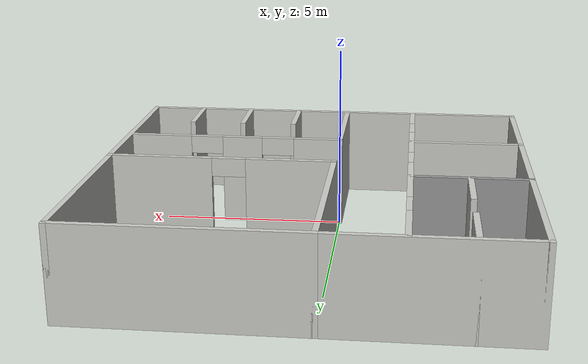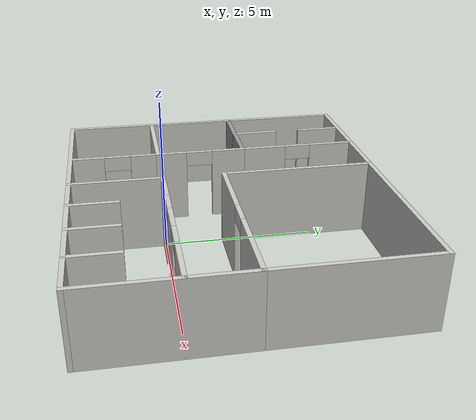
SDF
<?xml version='1.0'?>
<sdf version='1.6'>
  <model name='storehouse'>
    <pose frame=''>0.5 2 0 0 -0 0</pose>
    <link name='Wall_1'>
      <collision name='Wall_1_Collision'>
        <geometry>
          <box>
            <size>5.15 0.15 2.5</size>
          </box>
        </geometry>
        <pose frame=''>0 0 1.25 0 -0 0</pose>
      </collision>
      <visual name='Wall_1_Visual'>
        <pose frame=''>0 0 1.25 0 -0 0</pose>
        <geometry>
          <box>
            <size>5.15 0.15 2.5</size>
          </box>
        </geometry>
        <material>
          <script>
            <uri>file://media/materials/scripts/gazebo.material</uri>
            <name>Gazebo/CeilingTiled</name>
          </script>
          <ambient>0.227451 0.227451 0.227451 1</ambient>
        </material>
      </visual>
      <pose frame=''>5.5 -2.5 0 0 0 -1.5708</pose>
    </link>
    <link name='Wall_10'>
      <collision name='Wall_10_Collision'>
        <geometry>
          <box>
            <size>3.15 0.15 2.5</size>
          </box>
        </geometry>
        <pose frame=''>0 0 1.25 0 -0 0</pose>
      </collision>
      <visual name='Wall_10_Visual'>
        <pose frame=''>0 0 1.25 0 -0 0</pose>
        <geometry>
          <box>
            <size>3.15 0.15 2.5</size>
          </box>
        </geometry>
        <material>
          <script>
            <uri>file://media/materials/scripts/gazebo.material</uri>
            <name>Gazebo/Grey</name>
          </script>
          <ambient>0.227451 0.227451 0.227451 1</ambient>
        </material>
      </visual>
      <pose frame=''>-4 1 0 0 -0 0</pose>
    </link>
    <link name='Wall_12'>
      <pose frame=''>-2.5 -2 0 0 0 -1.5708</pose>
      <visual name='Wall_12_Visual_0'>
        <pose frame=''>-2.48638 0 1.25 0 -0 0</pose>
        <geometry>
          <box>
            <size>1.17723 0.15 2.5</size>
          </box>
        </geometry>
        <material>
          <script>
            <uri>file://media/materials/scripts/gazebo.material</uri>
            <name>Gazebo/CeilingTiled</name>
          </script>
          <ambient>0.227451 0.227451 0.227451 1</ambient>
        </material>
      </visual>
      <collision name='Wall_12_Collision_0'>
        <geometry>
          <box>
            <size>1.17723 0.15 2.5</size>
          </box>
        </geometry>
        <pose frame=''>-2.48638 0 1.25 0 -0 0</pose>
      </collision>
      <visual name='Wall_12_Visual_1'>
        <pose frame=''>-0.019629 0 1.25 0 -0 0</pose>
        <geometry>
          <box>
            <size>1.95628 0.15 2.5</size>
          </box>
        </geometry>
        <material>
          <script>
            <uri>file://media/materials/scripts/gazebo.material</uri>
            <name>Gazebo/CeilingTiled</name>
          </script>
          <ambient>0.227451 0.227451 0.227451 1</ambient>
        </material>
      </visual>
      <collision name='Wall_12_Collision_1'>
        <geometry>
          <box>
            <size>1.95628 0.15 2.5</size>
          </box>
        </geometry>
        <pose frame=''>-0.019629 0 1.25 0 -0 0</pose>
      </collision>
      <visual name='Wall_12_Visual_2'>
        <pose frame=''>2.46676 0 1.25 0 -0 0</pose>
        <geometry>
          <box>
            <size>1.21649 0.15 2.5</size>
          </box>
        </geometry>
        <material>
          <script>
            <uri>file://media/materials/scripts/gazebo.material</uri>
            <name>Gazebo/CeilingTiled</name>
          </script>
          <ambient>0.227451 0.227451 0.227451 1</ambient>
        </material>
      </visual>
      <collision name='Wall_12_Collision_2'>
        <geometry>
          <box>
            <size>1.21649 0.15 2.5</size>
          </box>
        </geometry>
        <pose frame=''>2.46676 0 1.25 0 -0 0</pose>
      </collision>
      <visual name='Wall_12_Visual_3'>
        <pose frame=''>-1.44777 0 2.25 0 -0 0</pose>
        <geometry>
          <box>
            <size>0.9 0.15 0.5</size>
          </box>
        </geometry>
        <material>
          <script>
            <uri>file://media/materials/scripts/gazebo.material</uri>
            <name>Gazebo/CeilingTiled</name>
          </script>
          <ambient>0.227451 0.227451 0.227451 1</ambient>
        </material>
      </visual>
      <collision name='Wall_12_Collision_3'>
        <geometry>
          <box>
            <size>0.9 0.15 0.5</size>
          </box>
        </geometry>
        <pose frame=''>-1.44777 0 2.25 0 -0 0</pose>
      </collision>
      <visual name='Wall_12_Visual_4'>
        <pose frame=''>1.40851 0 2.25 0 -0 0</pose>
        <geometry>
          <box>
            <size>0.9 0.15 0.5</size>
          </box>
        </geometry>
        <material>
          <script>
            <uri>file://media/materials/scripts/gazebo.material</uri>
            <name>Gazebo/CeilingTiled</name>
          </script>
          <ambient>0.227451 0.227451 0.227451 1</ambient>
        </material>
      </visual>
      <collision name='Wall_12_Collision_4'>
        <geometry>
          <box>
            <size>0.9 0.15 0.5</size>
          </box>
        </geometry>
        <pose frame=''>1.40851 0 2.25 0 -0 0</pose>
      </collision>
    </link>
    <link name='Wall_14'>
      <collision name='Wall_14_Collision'>
        <geometry>
          <box>
            <size>3.15 0.15 2.5</size>
          </box>
        </geometry>
        <pose frame=''>0 0 1.25 0 -0 0</pose>
      </collision>
      <visual name='Wall_14_Visual'>
        <pose frame=''>0 0 1.25 0 -0 0</pose>
        <geometry>
          <box>
            <size>3.15 0.15 2.5</size>
          </box>
        </geometry>
        <material>
          <script>
            <uri>file://media/materials/scripts/gazebo.material</uri>
            <name>Gazebo/CeilingTiled</name>
          </script>
          <ambient>0.227451 0.227451 0.227451 1</ambient>
        </material>
      </visual>
      <pose frame=''>-4 -2 0 0 -0 0</pose>
    </link>
    <link name='Wall_16'>
      <collision name='Wall_16_Collision'>
        <geometry>
          <box>
            <size>3.15 0.15 2.5</size>
          </box>
        </geometry>
        <pose frame=''>0 0 1.25 0 -0 0</pose>
      </collision>
      <visual name='Wall_16_Visual'>
        <pose frame=''>0 0 1.25 0 -0 0</pose>
        <geometry>
          <box>
            <size>3.15 0.15 2.5</size>
          </box>
        </geometry>
        <material>
          <script>
            <uri>file://media/materials/scripts/gazebo.material</uri>
            <name>Gazebo/CeilingTiled</name>
          </script>
          <ambient>0.227451 0.227451 0.227451 1</ambient>
        </material>
      </visual>
      <pose frame=''>-0.5 -3.5 0 0 -0 1.5708</pose>
    </link>
    <link name='Wall_17'>
      <pose frame=''>2.5 -2 0 0 -0 0</pose>
      <visual name='Wall_17_Visual_0'>
        <pose frame=''>-2.3871 0 1.25 0 -0 0</pose>
        <geometry>
          <box>
            <size>1.3758 0.15 2.5</size>
          </box>
        </geometry>
        <material>
          <script>
            <uri>file://media/materials/scripts/gazebo.material</uri>
            <name>Gazebo/CeilingTiled</name>
          </script>
          <ambient>0.207843 0.207843 0.207843 1</ambient>
        </material>
      </visual>
      <collision name='Wall_17_Collision_0'>
        <geometry>
          <box>
            <size>1.3758 0.15 2.5</size>
          </box>
        </geometry>
        <pose frame=''>-2.3871 0 1.25 0 -0 0</pose>
      </collision>
      <visual name='Wall_17_Visual_1'>
        <pose frame=''>-0.239748 0 1.25 0 -0 0</pose>
        <geometry>
          <box>
            <size>1.1189 0.15 2.5</size>
          </box>
        </geometry>
        <material>
          <script>
            <uri>file://media/materials/scripts/gazebo.material</uri>
            <name>Gazebo/CeilingTiled</name>
          </script>
          <ambient>0.207843 0.207843 0.207843 1</ambient>
        </material>
      </visual>
      <collision name='Wall_17_Collision_1'>
        <geometry>
          <box>
            <size>1.1189 0.15 2.5</size>
          </box>
        </geometry>
        <pose frame=''>-0.239748 0 1.25 0 -0 0</pose>
      </collision>
      <visual name='Wall_17_Visual_2'>
        <pose frame=''>2.14735 0 1.25 0 -0 0</pose>
        <geometry>
          <box>
            <size>1.8553 0.15 2.5</size>
          </box>
        </geometry>
        <material>
          <script>
            <uri>file://media/materials/scripts/gazebo.material</uri>
            <name>Gazebo/CeilingTiled</name>
          </script>
          <ambient>0.207843 0.207843 0.207843 1</ambient>
        </material>
      </visual>
      <collision name='Wall_17_Collision_2'>
        <geometry>
          <box>
            <size>1.8553 0.15 2.5</size>
          </box>
        </geometry>
        <pose frame=''>2.14735 0 1.25 0 -0 0</pose>
      </collision>
      <visual name='Wall_17_Visual_3'>
        <pose frame=''>-1.2492 0 2.25 0 -0 0</pose>
        <geometry>
          <box>
            <size>0.9 0.15 0.5</size>
          </box>
        </geometry>
        <material>
          <script>
            <uri>file://media/materials/scripts/gazebo.material</uri>
            <name>Gazebo/CeilingTiled</name>
          </script>
          <ambient>0.207843 0.207843 0.207843 1</ambient>
        </material>
      </visual>
      <collision name='Wall_17_Collision_3'>
        <geometry>
          <box>
            <size>0.9 0.15 0.5</size>
          </box>
        </geometry>
        <pose frame=''>-1.2492 0 2.25 0 -0 0</pose>
      </collision>
      <visual name='Wall_17_Visual_4'>
        <pose frame=''>0.769704 0 2.25 0 -0 0</pose>
        <geometry>
          <box>
            <size>0.9 0.15 0.5</size>
          </box>
        </geometry>
        <material>
          <script>
            <uri>file://media/materials/scripts/gazebo.material</uri>
            <name>Gazebo/CeilingTiled</name>
          </script>
          <ambient>0.207843 0.207843 0.207843 1</ambient>
        </material>
      </visual>
      <collision name='Wall_17_Collision_4'>
        <geometry>
          <box>
            <size>0.9 0.15 0.5</size>
          </box>
        </geometry>
        <pose frame=''>0.769704 0 2.25 0 -0 0</pose>
      </collision>
    </link>
    <link name='Wall_19'>
      <collision name='Wall_19_Collision'>
        <geometry>
          <box>
            <size>1.65 0.15 2.5</size>
          </box>
        </geometry>
        <pose frame=''>0 0 1.25 0 -0 0</pose>
      </collision>
      <visual name='Wall_19_Visual'>
        <pose frame=''>0 0 1.25 0 -0 0</pose>
        <geometry>
          <box>
            <size>1.65 0.15 2.5</size>
          </box>
        </geometry>
        <material>
          <script>
            <uri>file://media/materials/scripts/gazebo.material</uri>
            <name>Gazebo/CeilingTiled</name>
          </script>
          <ambient>0.227451 0.227451 0.227451 1</ambient>
        </material>
      </visual>
      <pose frame=''>1 -4.25 0 0 -0 1.5708</pose>
    </link>
    <link name='Wall_2'>
      <collision name='Wall_2_Collision'>
        <geometry>
          <box>
            <size>11.15 0.15 2.5</size>
          </box>
        </geometry>
        <pose frame=''>0 0 1.25 0 -0 0</pose>
      </collision>
      <visual name='Wall_2_Visual'>
        <pose frame=''>0 0 1.25 0 -0 0</pose>
        <geometry>
          <box>
            <size>11.15 0.15 2.5</size>
          </box>
        </geometry>
        <material>
          <script>
            <uri>file://media/materials/scripts/gazebo.material</uri>
            <name>Gazebo/CeilingTiled</name>
          </script>
          <ambient>0.227451 0.227451 0.227451 1</ambient>
        </material>
      </visual>
      <pose frame=''>0 -5 0 0 -0 3.14159</pose>
    </link>
    <link name='Wall_21'>
      <collision name='Wall_21_Collision'>
        <geometry>
          <box>
            <size>1.65 0.15 2.5</size>
          </box>
        </geometry>
        <pose frame=''>0 0 1.25 0 -0 0</pose>
      </collision>
      <visual name='Wall_21_Visual'>
        <pose frame=''>0 0 1.25 0 -0 0</pose>
        <geometry>
          <box>
            <size>1.65 0.15 2.5</size>
          </box>
        </geometry>
        <material>
          <script>
            <uri>file://media/materials/scripts/gazebo.material</uri>
            <name>Gazebo/CeilingTiled</name>
          </script>
          <ambient>0.227451 0.227451 0.227451 1</ambient>
        </material>
      </visual>
      <pose frame=''>2.5 -4.25 0 0 -0 1.5708</pose>
    </link>
    <link name='Wall_23'>
      <collision name='Wall_23_Collision'>
        <geometry>
          <box>
            <size>1.65 0.15 2.5</size>
          </box>
        </geometry>
        <pose frame=''>0 0 1.25 0 -0 0</pose>
      </collision>
      <visual name='Wall_23_Visual'>
        <pose frame=''>0 0 1.25 0 -0 0</pose>
        <geometry>
          <box>
            <size>1.65 0.15 2.5</size>
          </box>
        </geometry>
        <material>
          <script>
            <uri>file://media/materials/scripts/gazebo.material</uri>
            <name>Gazebo/CeilingTiled</name>
          </script>
          <ambient>0.227451 0.227451 0.227451 1</ambient>
        </material>
      </visual>
      <pose frame=''>4 -4.25 0 0 -0 1.5708</pose>
    </link>
    <link name='Wall_25'>
      <pose frame=''>-2.5 3 0 0 -0 1.5708</pose>
      <visual name='Wall_25_Visual_0'>
        <pose frame=''>-1.26057 0 1.25 0 -0 0</pose>
        <geometry>
          <box>
            <size>1.62887 0.15 2.5</size>
          </box>
        </geometry>
        <material>
          <script>
            <uri>file://media/materials/scripts/gazebo.material</uri>
            <name>Gazebo/CeilingTiled</name>
          </script>
          <ambient>0.227451 0.227451 0.227451 1</ambient>
        </material>
      </visual>
      <collision name='Wall_25_Collision_0'>
        <geometry>
          <box>
            <size>1.62887 0.15 2.5</size>
          </box>
        </geometry>
        <pose frame=''>-1.26057 0 1.25 0 -0 0</pose>
      </collision>
      <visual name='Wall_25_Visual_1'>
        <pose frame=''>1.26443 0 1.25 0 -0 0</pose>
        <geometry>
          <box>
            <size>1.62113 0.15 2.5</size>
          </box>
        </geometry>
        <material>
          <script>
            <uri>file://media/materials/scripts/gazebo.material</uri>
            <name>Gazebo/CeilingTiled</name>
          </script>
          <ambient>0.227451 0.227451 0.227451 1</ambient>
        </material>
      </visual>
      <collision name='Wall_25_Collision_1'>
        <geometry>
          <box>
            <size>1.62113 0.15 2.5</size>
          </box>
        </geometry>
        <pose frame=''>1.26443 0 1.25 0 -0 0</pose>
      </collision>
      <visual name='Wall_25_Visual_2'>
        <pose frame=''>0.003868 0 2.25 0 -0 0</pose>
        <geometry>
          <box>
            <size>0.9 0.15 0.5</size>
          </box>
        </geometry>
        <material>
          <script>
            <uri>file://media/materials/scripts/gazebo.material</uri>
            <name>Gazebo/CeilingTiled</name>
          </script>
          <ambient>0.227451 0.227451 0.227451 1</ambient>
        </material>
      </visual>
      <collision name='Wall_25_Collision_2'>
        <geometry>
          <box>
            <size>0.9 0.15 0.5</size>
          </box>
        </geometry>
        <pose frame=''>0.003868 0 2.25 0 -0 0</pose>
      </collision>
    </link>
    <link name='Wall_27'>
      <collision name='Wall_27_Collision'>
        <geometry>
          <box>
            <size>1.65 0.15 2.5</size>
          </box>
        </geometry>
        <pose frame=''>0 0 1.25 0 -0 0</pose>
      </collision>
      <visual name='Wall_27_Visual'>
        <pose frame=''>0 0 1.25 0 -0 0</pose>
        <geometry>
          <box>
            <size>1.65 0.15 2.5</size>
          </box>
        </geometry>
        <material>
          <script>
            <uri>file://media/materials/scripts/gazebo.material</uri>
            <name>Gazebo/CeilingTiled</name>
          </script>
          <ambient>0.227451 0.227451 0.227451 1</ambient>
        </material>
      </visual>
      <pose frame=''>-4 4.25 0 0 0 -1.5708</pose>
    </link>
    <link name='Wall_29'>
      <collision name='Wall_29_Collision'>
        <geometry>
          <box>
            <size>1.65 0.15 2.5</size>
          </box>
        </geometry>
        <pose frame=''>0 0 1.25 0 -0 0</pose>
      </collision>
      <visual name='Wall_29_Visual'>
        <pose frame=''>0 0 1.25 0 -0 0</pose>
        <geometry>
          <box>
            <size>1.65 0.15 2.5</size>
          </box>
        </geometry>
        <material>
          <script>
            <uri>file://media/materials/scripts/gazebo.material</uri>
            <name>Gazebo/CeilingTiled</name>
          </script>
          <ambient>0.227451 0.227451 0.227451 1</ambient>
        </material>
      </visual>
      <pose frame=''>-4 1.75 0 0 -0 1.5708</pose>
    </link>
    <link name='Wall_3'>
      <collision name='Wall_3_Collision'>
        <geometry>
          <box>
            <size>10.15 0.15 2.5</size>
          </box>
        </geometry>
        <pose frame=''>0 0 1.25 0 -0 0</pose>
      </collision>
      <visual name='Wall_3_Visual'>
        <pose frame=''>0 0 1.25 0 -0 0</pose>
        <geometry>
          <box>
            <size>10.15 0.15 2.5</size>
          </box>
        </geometry>
        <material>
          <script>
            <uri>file://media/materials/scripts/gazebo.material</uri>
            <name>Gazebo/CeilingTiled</name>
          </script>
          <ambient>0.227451 0.227451 0.227451 1</ambient>
        </material>
      </visual>
      <pose frame=''>-5.5 0 0 0 -0 1.5708</pose>
    </link>
    <link name='Wall_31'>
      <collision name='Wall_31_Collision'>
        <geometry>
          <box>
            <size>6.15 0.15 2.5</size>
          </box>
        </geometry>
        <pose frame=''>0 0 1.25 0 -0 0</pose>
      </collision>
      <visual name='Wall_31_Visual'>
        <pose frame=''>0 0 1.25 0 -0 0</pose>
        <geometry>
          <box>
            <size>6.15 0.15 2.5</size>
          </box>
        </geometry>
        <material>
          <script>
            <uri>file://media/materials/scripts/gazebo.material</uri>
            <name>Gazebo/CeilingTiled</name>
          </script>
          <ambient>0.227451 0.227451 0.227451 1</ambient>
        </material>
      </visual>
      <pose frame=''>2.5 5 0 0 -0 0</pose>
    </link>
    <link name='Wall_32'>
      <collision name='Wall_32_Collision'>
        <geometry>
          <box>
            <size>5.15 0.15 2.5</size>
          </box>
        </geometry>
        <pose frame=''>0 0 1.25 0 -0 0</pose>
      </collision>
      <visual name='Wall_32_Visual'>
        <pose frame=''>0 0 1.25 0 -0 0</pose>
        <geometry>
          <box>
            <size>5.15 0.15 2.5</size>
          </box>
        </geometry>
        <material>
          <script>
            <uri>file://media/materials/scripts/gazebo.material</uri>
            <name>Gazebo/CeilingTiled</name>
          </script>
          <ambient>0.227451 0.227451 0.227451 1</ambient>
        </material>
      </visual>
      <pose frame=''>5.5 2.5 0 0 0 -1.5708</pose>
    </link>
    <link name='Wall_5'>
      <collision name='Wall_5_Collision'>
        <geometry>
          <box>
            <size>5.15 0.15 2.5</size>
          </box>
        </geometry>
        <pose frame=''>0 0 1.25 0 -0 0</pose>
      </collision>
      <visual name='Wall_5_Visual'>
        <pose frame=''>0 0 1.25 0 -0 0</pose>
        <geometry>
          <box>
            <size>5.15 0.15 2.5</size>
          </box>
        </geometry>
        <material>
          <script>
            <uri>file://media/materials/scripts/gazebo.material</uri>
            <name>Gazebo/CeilingTiled</name>
          </script>
          <ambient>0.227451 0.227451 0.227451 1</ambient>
        </material>
      </visual>
      <pose frame=''>-3 5 0 0 -0 0</pose>
    </link>
    <link name='Wall_7'>
      <collision name='Wall_7_Collision'>
        <geometry>
          <box>
            <size>5.15 0.15 2.5</size>
          </box>
        </geometry>
        <pose frame=''>0 0 1.25 0 -0 0</pose>
      </collision>
      <visual name='Wall_7_Visual'>
        <pose frame=''>0 0 1.25 0 -0 0</pose>
        <geometry>
          <box>
            <size>5.15 0.15 2.5</size>
          </box>
        </geometry>
        <material>
          <script>
            <uri>file://media/materials/scripts/gazebo.material</uri>
            <name>Gazebo/CeilingTiled</name>
          </script>
          <ambient>0.227451 0.227451 0.227451 1</ambient>
        </material>
      </visual>
      <pose frame=''>-0.5 2.5 0 0 0 -1.5708</pose>
    </link>
    <link name='Wall_8'>
      <pose frame=''>2.5 0 0 0 -0 0</pose>
      <visual name='Wall_8_Visual_0'>
        <pose frame=''>-1.8672 0 1.25 0 -0 0</pose>
        <geometry>
          <box>
            <size>2.4156 0.15 2.5</size>
          </box>
        </geometry>
        <material>
          <script>
            <uri>file://media/materials/scripts/gazebo.material</uri>
            <name>Gazebo/CeilingTiled</name>
          </script>
          <ambient>0.227451 0.227451 0.227451 1</ambient>
        </material>
      </visual>
      <collision name='Wall_8_Collision_0'>
        <geometry>
          <box>
            <size>2.4156 0.15 2.5</size>
          </box>
        </geometry>
        <pose frame=''>-1.8672 0 1.25 0 -0 0</pose>
      </collision>
      <visual name='Wall_8_Visual_1'>
        <pose frame=''>1.6578 0 1.25 0 -0 0</pose>
        <geometry>
          <box>
            <size>2.8344 0.15 2.5</size>
          </box>
        </geometry>
        <material>
          <script>
            <uri>file://media/materials/scripts/gazebo.material</uri>
            <name>Gazebo/CeilingTiled</name>
          </script>
          <ambient>0.227451 0.227451 0.227451 1</ambient>
        </material>
      </visual>
      <collision name='Wall_8_Collision_1'>
        <geometry>
          <box>
            <size>2.8344 0.15 2.5</size>
          </box>
        </geometry>
        <pose frame=''>1.6578 0 1.25 0 -0 0</pose>
      </collision>
      <visual name='Wall_8_Visual_2'>
        <pose frame=''>-0.2094 0 2.25 0 -0 0</pose>
        <geometry>
          <box>
            <size>0.9 0.15 0.5</size>
          </box>
        </geometry>
        <material>
          <script>
            <uri>file://media/materials/scripts/gazebo.material</uri>
            <name>Gazebo/CeilingTiled</name>
          </script>
          <ambient>0.227451 0.227451 0.227451 1</ambient>
        </material>
      </visual>
      <collision name='Wall_8_Collision_2'>
        <geometry>
          <box>
            <size>0.9 0.15 0.5</size>
          </box>
        </geometry>
        <pose frame=''>-0.2094 0 2.25 0 -0 0</pose>
      </collision>
    </link>
    <static>1</static>
  </model>
</sdf>
